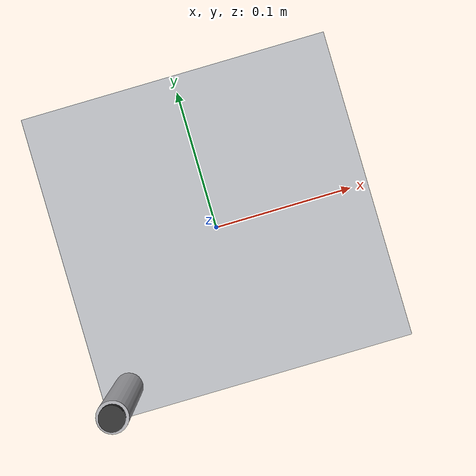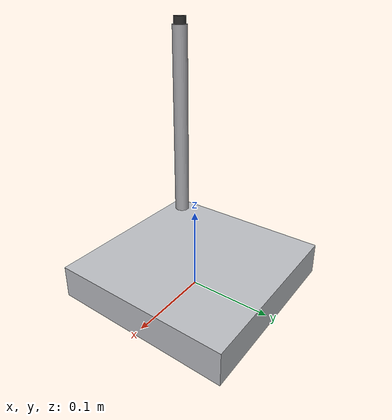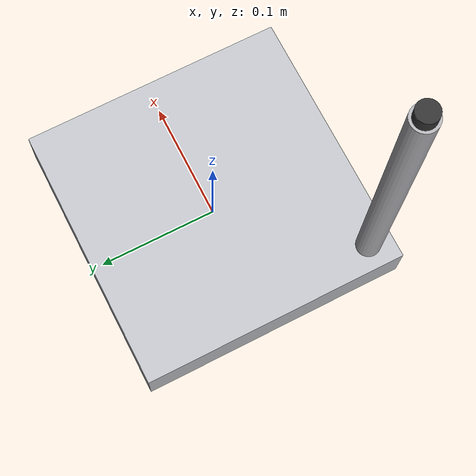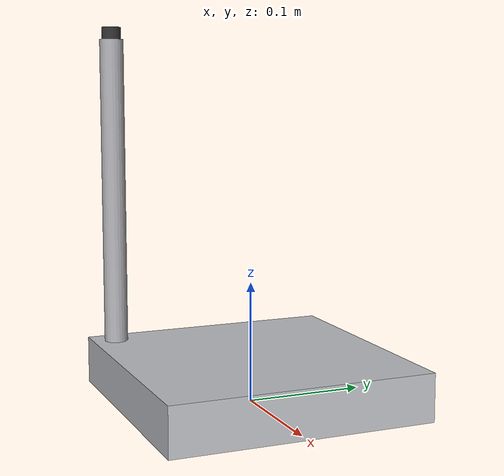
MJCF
<?xml version="1.0" encoding="utf-8"?>
<mujoco model="pick_and_place_machine">
  <compiler angle="radian" autolimits="true"/>
  <default>
    <default class="body"><geom contype="1" conaffinity="1"/></default>
  </default>
  <worldbody>
    <body name="base">
      <geom type="box" size="0.11 0.11 0.02" pos="0 0 0.02" rgba="0.75 0.76 0.78 1" class="body"/>
      <geom type="cylinder" size="0.01 0.14" pos="-0.09 -0.09 0.16" rgba="0.7 0.7 0.72 1" class="body"/>
      <body name="placement_head" pos="-0.09 -0.09 0.28">
        <joint name="placement_head_joint" type="slide" axis="0 0 1" range="-0.08 0" damping="1.0" frictionloss="0.3"/>
  <geom type="cylinder" size="0.008 0.03" pos="0 0 0" rgba="0.2 0.2 0.2 1" class="body"/>
      </body>
    </body>
  </worldbody>
</mujoco>
